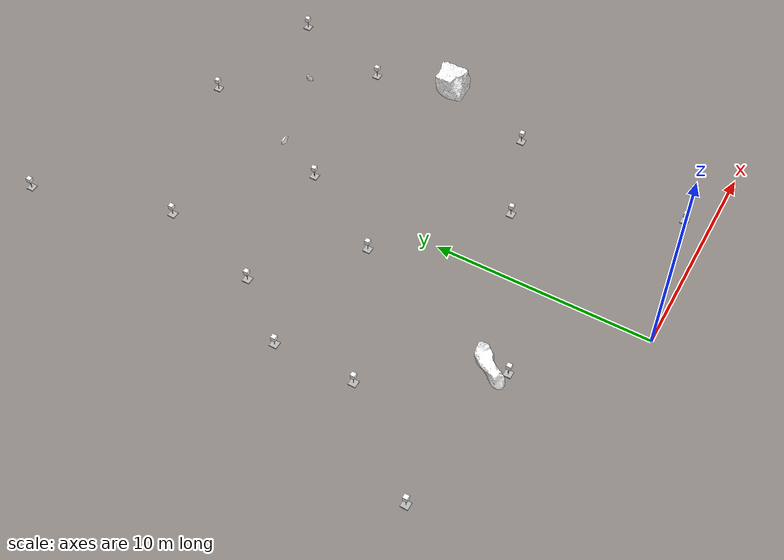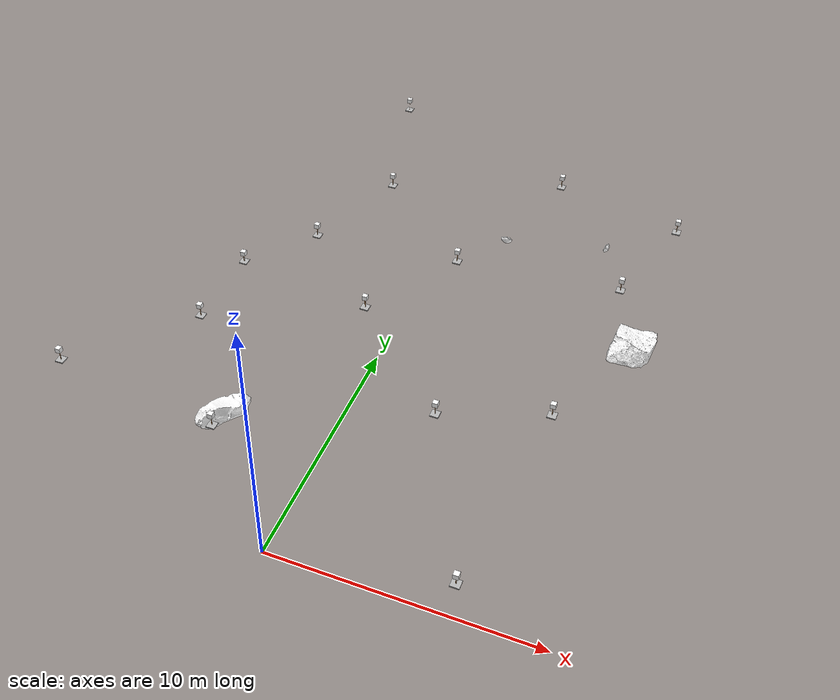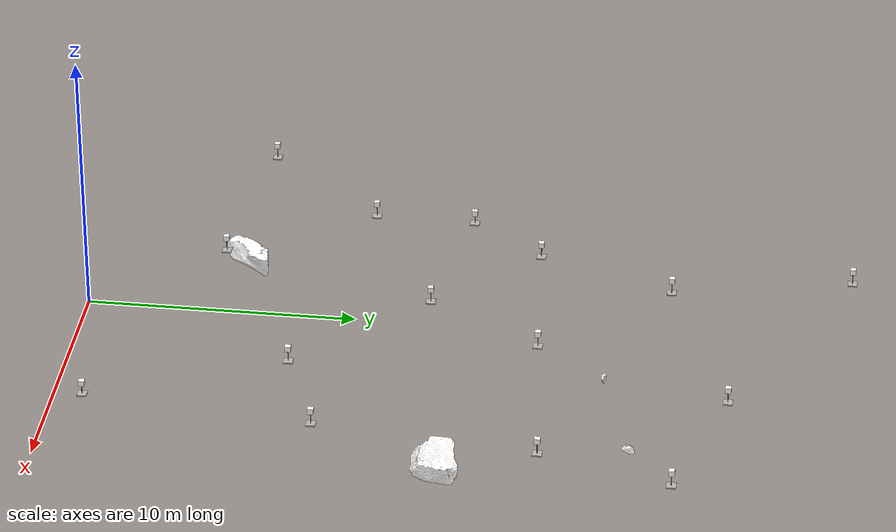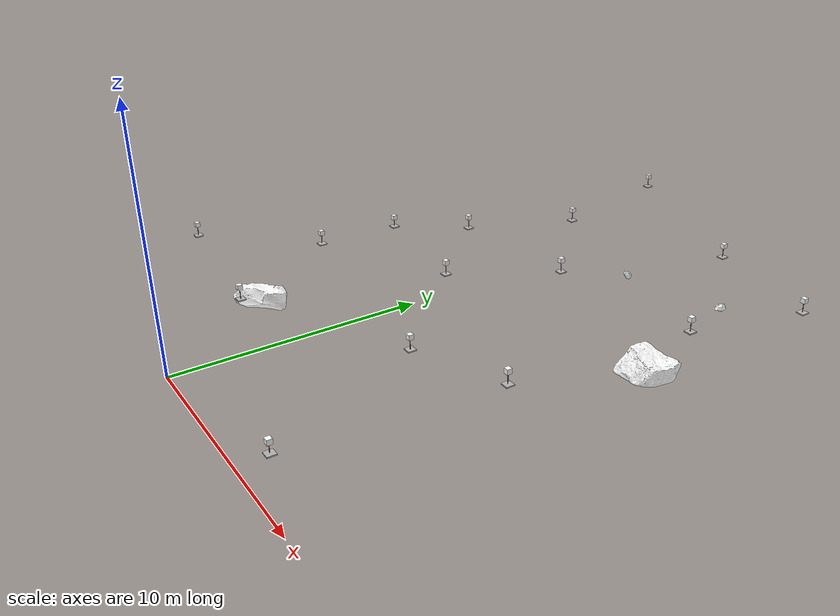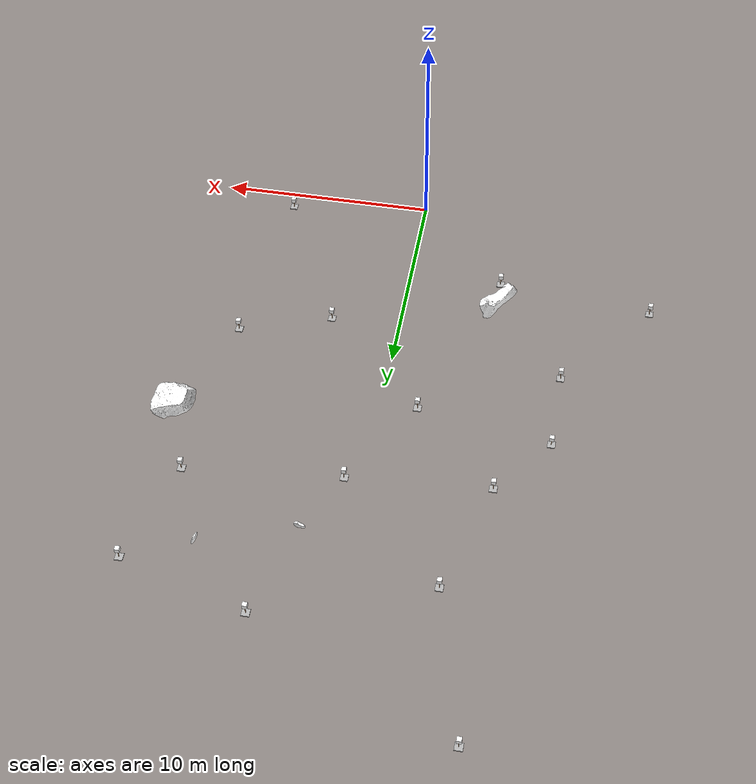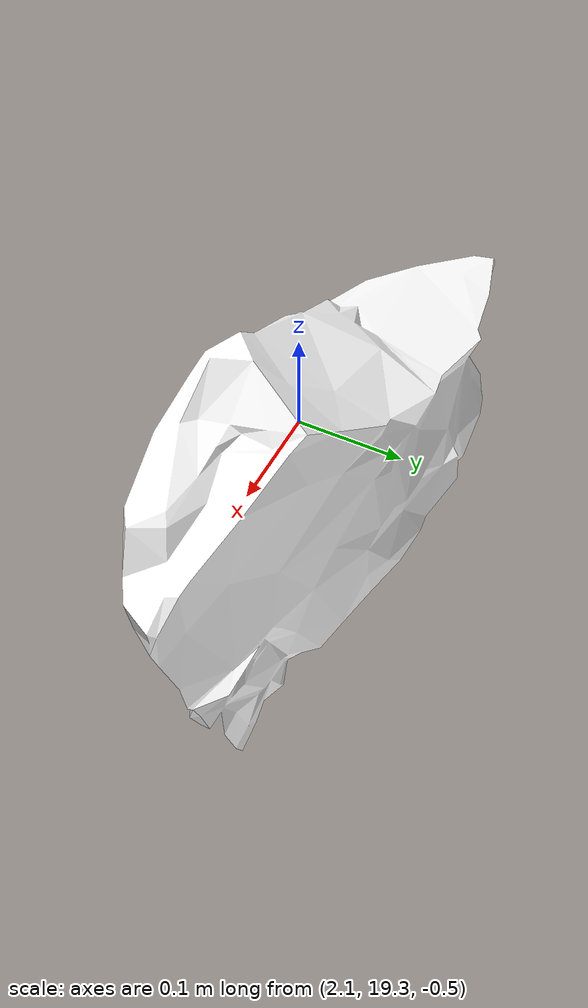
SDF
<sdf version="1.7">
 <world name="rover_world">
  <gravity>0 0 -9.81</gravity>
  <physics name="dart_physics" type="ignored">
   <max_step_size>0.003</max_step_size>
   <real_time_update_rate>333</real_time_update_rate>
   <real_time_factor>1.0</real_time_factor>
  </physics>
  <plugin filename="ignition-gazebo-physics-system" name="ignition::gazebo::systems::Physics"/>
  <plugin filename="ignition-gazebo-user-commands-system" name="ignition::gazebo::systems::UserCommands"/>
  <plugin filename="ignition-gazebo-scene-broadcaster-system" name="ignition::gazebo::systems::SceneBroadcaster"/>
  <plugin filename="ignition-gazebo-contact-system" name="ignition::gazebo::systems::Contact"/>
  <plugin filename="ignition-gazebo-pose-publisher-system" name="ignition::gazebo::systems::PosePublisher">
   <publish_link_pose>false</publish_link_pose>
   <publish_nested_model_pose>false</publish_nested_model_pose>
   <use_pose_vector_msg>true</use_pose_vector_msg>
   <update_frequency>50</update_frequency>
  </plugin>
  <plugin filename="ignition-gazebo-sensors-system" name="ignition::gazebo::systems::Sensors">
   <render_engine>ogre2</render_engine>
  </plugin>
  <plugin filename="ignition-gazebo-imu-system" name="ignition::gazebo::systems::Imu"/>
  <plugin filename="ignition-gazebo-magnetometer-system" name="ignition::gazebo::systems::Magnetometer"/>
  <scene>
   <ambient>0.95 0.95 0.95 1</ambient>
   <background>0.70 0.70 0.70 1</background>
   <shadows>false</shadows>
  </scene>
  <light type="directional" name="sun">
   <cast_shadows>false</cast_shadows>
   <pose>0 0 30 0 0 0</pose>
   <diffuse>0.9 0.85 0.8 1</diffuse>
   <specular>0.2 0.2 0.2 1</specular>
   <direction>-0.3 0.3 -0.9</direction>
  </light>
  <model name="ArUco_51">
   <static>true</static>
   <pose>3.1830 8.0120 0.0436 0.0000 0.0000 0.0000</pose>
   <include><uri>model://aruco_1</uri></include>
  </model>
  <model name="ArUco_52">
   <static>true</static>
   <pose>7.2690 9.4820 0.1664 0.0000 0.0000 0.0000</pose>
   <include><uri>model://aruco_2</uri></include>
  </model>
  <model name="ArUco_53">
   <static>true</static>
   <pose>7.8780 17.5830 -0.0192 0.0000 0.0000 0.0000</pose>
   <include><uri>model://aruco_3</uri></include>
  </model>
  <model name="ArUco_54">
   <static>true</static>
   <pose>9.2250 22.3890 -0.0382 0.0000 0.0000 0.0000</pose>
   <include><uri>model://aruco_4</uri></include>
  </model>
  <model name="ArUco_55">
   <static>true</static>
   <pose>3.5180 23.9900 -0.2291 0.0000 0.0000 0.0000</pose>
   <include><uri>model://aruco_5</uri></include>
  </model>
  <model name="ArUco_56">
   <static>true</static>
   <pose>0.8820 16.8700 -0.0882 0.0000 0.0000 0.0000</pose>
   <include><uri>model://aruco_6</uri></include>
  </model>
  <model name="ArUco_57">
   <static>true</static>
   <pose>-3.9440 21.4150 -0.4407 0.0000 0.0000 0.0000</pose>
   <include><uri>model://aruco_7</uri></include>
  </model>
  <model name="ArUco_58">
   <static>true</static>
   <pose>-5.4910 16.3340 -0.1752 0.0000 0.0000 0.0000</pose>
   <include><uri>model://aruco_8</uri></include>
  </model>
  <model name="ArUco_59">
   <static>true</static>
   <pose>-7.6950 13.5280 -0.2078 0.0000 0.0000 0.0000</pose>
   <include><uri>model://aruco_9</uri></include>
  </model>
  <model name="ArUco_60">
   <static>true</static>
   <pose>-1.6100 12.6020 -0.0469 0.0000 0.0000 0.0000</pose>
   <include><uri>model://aruco_10</uri></include>
  </model>
  <model name="ArUco_61">
   <static>true</static>
   <pose>-7.7150 9.7210 -0.1750 0.0000 0.0000 0.0000</pose>
   <include><uri>model://aruco_11</uri></include>
  </model>
  <model name="ArUco_62">
   <static>true</static>
   <pose>-4.3110 4.4420 -0.0557 0.0000 0.0000 0.0000</pose>
   <include><uri>model://aruco_12</uri></include>
  </model>
  <model name="ArUco_63">
   <static>true</static>
   <pose>-5.7200 28.1180 -0.6285 0.0000 0.0000 0.0000</pose>
   <include><uri>model://aruco_13</uri></include>
  </model>
  <model name="ArUco_64">
   <static>true</static>
   <pose>-11.4380 5.2300 -0.0173 0.0000 0.0000 0.0000</pose>
   <include><uri>model://aruco_14</uri></include>
  </model>
  <model name="ArUco_65">
   <static>true</static>
   <pose>6.4830 1.1020 0.2320 0.0000 0.0000 0.0000</pose>
   <include><uri>model://aruco_15</uri></include>
  </model>
  <model name="Rock_1">
   <static>true</static>
   <pose>6.5468 20.6896 -0.4470 -1.6554 0.1465 1.4758</pose>
   <link name="rock_link">
    <inertial>
     <mass>10.0</mass>
     <inertia><ixx>0.1</ixx><ixy>0.0</ixy><ixz>0.0</ixz><iyy>0.1</iyy><iyz>0.0</iyz><izz>0.1</izz></inertia>
    </inertial>
    <visual name="visual">
     <geometry><mesh><uri>model://rock_8/meshes/rock_8.obj</uri></mesh></geometry>
     <material>
      <ambient>1 1 1 1</ambient>
      <diffuse>1 1 1 1</diffuse>
      <pbr><metal><albedo_map>model://rock_5/meshes/rock_small_diffuse.jpg</albedo_map></metal></pbr>
     </material>
    </visual>
   </link>
  </model>
  <model name="Rock_3">
   <static>true</static>
   <pose>2.3160 19.4186 -0.3355 1.6054 -0.0453 -0.2907</pose>
   <link name="rock_link">
    <inertial>
     <mass>10.0</mass>
     <inertia><ixx>0.1</ixx><ixy>0.0</ixy><ixz>0.0</ixz><iyy>0.1</iyy><iyz>0.0</iyz><izz>0.1</izz></inertia>
    </inertial>
    <visual name="visual">
     <geometry><mesh><uri>model://rock_8/meshes/rock_8.obj</uri></mesh></geometry>
     <material>
      <ambient>1 1 1 1</ambient>
      <diffuse>1 1 1 1</diffuse>
      <pbr><metal><albedo_map>model://rock_5/meshes/rock_small_diffuse.jpg</albedo_map></metal></pbr>
     </material>
    </visual>
   </link>
  </model>
  <model name="Rock_4">
   <static>true</static>
   <pose>9.1624 14.2031 -0.2086 1.4363 -0.0868 -0.7751</pose>
   <link name="rock_link">
    <inertial>
     <mass>5000.0</mass>
     <inertia>
      <ixx>1000.0</ixx>
      <ixy>0.0</ixy>
      <ixz>0.0</ixz>
      <iyy>1000.0</iyy>
      <iyz>0.0</iyz>
      <izz>1000.0</izz>
     </inertia>
    </inertial>
    <visual name="visual">
     <geometry><mesh><uri>model://rock_1/meshes/rock_1.obj</uri></mesh></geometry>
     <material>
      <ambient>1 1 1 1</ambient>
      <diffuse>1 1 1 1</diffuse>
      <pbr><metal><albedo_map>model://rock_1/meshes/rock_1_diffuse.jpg</albedo_map></metal></pbr>
     </material>
    </visual>
    <collision name="collision">
     <geometry><mesh><uri>model://rock_1/meshes/rock_1.obj</uri></mesh></geometry>
    </collision>
   </link>
  </model>
  <model name="Rock_5">
   <static>true</static>
   <pose>-4.5763 5.4552 -0.2265 1.3156 -0.0304 0.9777</pose>
   <link name="rock_link">
    <inertial>
     <mass>5000.0</mass>
     <inertia>
      <ixx>1000.0</ixx>
      <ixy>0.0</ixy>
      <ixz>0.0</ixz>
      <iyy>1000.0</iyy>
      <iyz>0.0</iyz>
      <izz>1000.0</izz>
     </inertia>
    </inertial>
    <visual name="visual">
     <geometry><mesh><uri>model://rock_4/meshes/rock_4.obj</uri></mesh></geometry>
     <material>
      <ambient>1 1 1 1</ambient>
      <diffuse>1 1 1 1</diffuse>
      <pbr><metal><albedo_map>model://rock_4/meshes/rock_4_diffuse.jpg</albedo_map></metal></pbr>
     </material>
    </visual>
    <collision name="collision">
     <geometry><mesh><uri>model://rock_4/meshes/rock_4.obj</uri></mesh></geometry>
    </collision>
   </link>
  </model>
 </world>
</sdf>

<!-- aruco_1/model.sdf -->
<sdf version="1.6">
  <model name="aruco_1">
    <static>true</static>
    <link name="link">
      <!-- Concrete Base -->
      <visual name="base_visual">
        <pose>0 0 0.025 0 0 0</pose>
        <geometry>
          <box>
            <size>0.35 0.35 0.05</size>
          </box>
        </geometry>
        <material>
          <ambient>0.7 0.7 0.7 1</ambient>
          <diffuse>0.7 0.7 0.7 1</diffuse>
        </material>
      </visual>
      <collision name="base_collision">
        <pose>0 0 0.025 0 0 0</pose>
        <geometry>
          <box>
            <size>0.35 0.35 0.05</size>
          </box>
        </geometry>
      </collision>

      <!-- Wooden Pole -->
      <visual name="pole_visual">
        <pose>0 0 0.26 0 0 0</pose>
        <geometry>
          <cylinder>
            <radius>0.015</radius>
            <length>0.42</length>
          </cylinder>
        </geometry>
        <material>
          <ambient>0.6 0.4 0.2 1</ambient>
          <diffuse>0.6 0.4 0.2 1</diffuse>
        </material>
      </visual>
      <collision name="pole_collision">
        <pose>0 0 0.26 0 0 0</pose>
        <geometry>
          <cylinder>
            <radius>0.015</radius>
            <length>0.42</length>
          </cylinder>
        </geometry>
      </collision>

      <!-- Head Box with ArUco Texture -->
      <visual name="head_visual">
        <pose>0 0 0.575 0 0 0</pose>
        <geometry>
          <box>
            <size>0.21 0.21 0.21</size>
          </box>
        </geometry>
        <material>
          <ambient>1 1 1 1</ambient>
          <diffuse>1 1 1 1</diffuse>
          <pbr>
            <metal>
              <albedo_map>model://aruco_1/materials/textures/marker_1.png</albedo_map>
            </metal>
          </pbr>
        </material>
      </visual>
      <collision name="head_collision">
        <pose>0 0 0.575 0 0 0</pose>
        <geometry>
          <box>
            <size>0.21 0.21 0.21</size>
          </box>
        </geometry>
      </collision>
    </link>
  </model>
</sdf>

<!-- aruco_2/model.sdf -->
<sdf version="1.6">
  <model name="aruco_2">
    <static>true</static>
    <link name="link">
      <!-- Concrete Base -->
      <visual name="base_visual">
        <pose>0 0 0.025 0 0 0</pose>
        <geometry>
          <box>
            <size>0.35 0.35 0.05</size>
          </box>
        </geometry>
        <material>
          <ambient>0.7 0.7 0.7 1</ambient>
          <diffuse>0.7 0.7 0.7 1</diffuse>
        </material>
      </visual>
      <collision name="base_collision">
        <pose>0 0 0.025 0 0 0</pose>
        <geometry>
          <box>
            <size>0.35 0.35 0.05</size>
          </box>
        </geometry>
      </collision>

      <!-- Wooden Pole -->
      <visual name="pole_visual">
        <pose>0 0 0.26 0 0 0</pose>
        <geometry>
          <cylinder>
            <radius>0.015</radius>
            <length>0.42</length>
          </cylinder>
        </geometry>
        <material>
          <ambient>0.6 0.4 0.2 1</ambient>
          <diffuse>0.6 0.4 0.2 1</diffuse>
        </material>
      </visual>
      <collision name="pole_collision">
        <pose>0 0 0.26 0 0 0</pose>
        <geometry>
          <cylinder>
            <radius>0.015</radius>
            <length>0.42</length>
          </cylinder>
        </geometry>
      </collision>

      <!-- Head Box with ArUco Texture -->
      <visual name="head_visual">
        <pose>0 0 0.575 0 0 0</pose>
        <geometry>
          <box>
            <size>0.21 0.21 0.21</size>
          </box>
        </geometry>
        <material>
          <ambient>1 1 1 1</ambient>
          <diffuse>1 1 1 1</diffuse>
          <pbr>
            <metal>
              <albedo_map>model://aruco_2/materials/textures/marker_2.png</albedo_map>
            </metal>
          </pbr>
        </material>
      </visual>
      <collision name="head_collision">
        <pose>0 0 0.575 0 0 0</pose>
        <geometry>
          <box>
            <size>0.21 0.21 0.21</size>
          </box>
        </geometry>
      </collision>
    </link>
  </model>
</sdf>

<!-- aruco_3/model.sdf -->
<sdf version="1.6">
  <model name="aruco_3">
    <static>true</static>
    <link name="link">
      <!-- Concrete Base -->
      <visual name="base_visual">
        <pose>0 0 0.025 0 0 0</pose>
        <geometry>
          <box>
            <size>0.35 0.35 0.05</size>
          </box>
        </geometry>
        <material>
          <ambient>0.7 0.7 0.7 1</ambient>
          <diffuse>0.7 0.7 0.7 1</diffuse>
        </material>
      </visual>
      <collision name="base_collision">
        <pose>0 0 0.025 0 0 0</pose>
        <geometry>
          <box>
            <size>0.35 0.35 0.05</size>
          </box>
        </geometry>
      </collision>

      <!-- Wooden Pole -->
      <visual name="pole_visual">
        <pose>0 0 0.26 0 0 0</pose>
        <geometry>
          <cylinder>
            <radius>0.015</radius>
            <length>0.42</length>
          </cylinder>
        </geometry>
        <material>
          <ambient>0.6 0.4 0.2 1</ambient>
          <diffuse>0.6 0.4 0.2 1</diffuse>
        </material>
      </visual>
      <collision name="pole_collision">
        <pose>0 0 0.26 0 0 0</pose>
        <geometry>
          <cylinder>
            <radius>0.015</radius>
            <length>0.42</length>
          </cylinder>
        </geometry>
      </collision>

      <!-- Head Box with ArUco Texture -->
      <visual name="head_visual">
        <pose>0 0 0.575 0 0 0</pose>
        <geometry>
          <box>
            <size>0.21 0.21 0.21</size>
          </box>
        </geometry>
        <material>
          <ambient>1 1 1 1</ambient>
          <diffuse>1 1 1 1</diffuse>
          <pbr>
            <metal>
              <albedo_map>model://aruco_3/materials/textures/marker_3.png</albedo_map>
            </metal>
          </pbr>
        </material>
      </visual>
      <collision name="head_collision">
        <pose>0 0 0.575 0 0 0</pose>
        <geometry>
          <box>
            <size>0.21 0.21 0.21</size>
          </box>
        </geometry>
      </collision>
    </link>
  </model>
</sdf>

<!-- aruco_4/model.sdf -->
<sdf version="1.6">
  <model name="aruco_4">
    <static>true</static>
    <link name="link">
      <!-- Concrete Base -->
      <visual name="base_visual">
        <pose>0 0 0.025 0 0 0</pose>
        <geometry>
          <box>
            <size>0.35 0.35 0.05</size>
          </box>
        </geometry>
        <material>
          <ambient>0.7 0.7 0.7 1</ambient>
          <diffuse>0.7 0.7 0.7 1</diffuse>
        </material>
      </visual>
      <collision name="base_collision">
        <pose>0 0 0.025 0 0 0</pose>
        <geometry>
          <box>
            <size>0.35 0.35 0.05</size>
          </box>
        </geometry>
      </collision>

      <!-- Wooden Pole -->
      <visual name="pole_visual">
        <pose>0 0 0.26 0 0 0</pose>
        <geometry>
          <cylinder>
            <radius>0.015</radius>
            <length>0.42</length>
          </cylinder>
        </geometry>
        <material>
          <ambient>0.6 0.4 0.2 1</ambient>
          <diffuse>0.6 0.4 0.2 1</diffuse>
        </material>
      </visual>
      <collision name="pole_collision">
        <pose>0 0 0.26 0 0 0</pose>
        <geometry>
          <cylinder>
            <radius>0.015</radius>
            <length>0.42</length>
          </cylinder>
        </geometry>
      </collision>

      <!-- Head Box with ArUco Texture -->
      <visual name="head_visual">
        <pose>0 0 0.575 0 0 0</pose>
        <geometry>
          <box>
            <size>0.21 0.21 0.21</size>
          </box>
        </geometry>
        <material>
          <ambient>1 1 1 1</ambient>
          <diffuse>1 1 1 1</diffuse>
          <pbr>
            <metal>
              <albedo_map>model://aruco_4/materials/textures/marker_4.png</albedo_map>
            </metal>
          </pbr>
        </material>
      </visual>
      <collision name="head_collision">
        <pose>0 0 0.575 0 0 0</pose>
        <geometry>
          <box>
            <size>0.21 0.21 0.21</size>
          </box>
        </geometry>
      </collision>
    </link>
  </model>
</sdf>

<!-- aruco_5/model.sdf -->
<sdf version="1.6">
  <model name="aruco_5">
    <static>true</static>
    <link name="link">
      <!-- Concrete Base -->
      <visual name="base_visual">
        <pose>0 0 0.025 0 0 0</pose>
        <geometry>
          <box>
            <size>0.35 0.35 0.05</size>
          </box>
        </geometry>
        <material>
          <ambient>0.7 0.7 0.7 1</ambient>
          <diffuse>0.7 0.7 0.7 1</diffuse>
        </material>
      </visual>
      <collision name="base_collision">
        <pose>0 0 0.025 0 0 0</pose>
        <geometry>
          <box>
            <size>0.35 0.35 0.05</size>
          </box>
        </geometry>
      </collision>

      <!-- Wooden Pole -->
      <visual name="pole_visual">
        <pose>0 0 0.26 0 0 0</pose>
        <geometry>
          <cylinder>
            <radius>0.015</radius>
            <length>0.42</length>
          </cylinder>
        </geometry>
        <material>
          <ambient>0.6 0.4 0.2 1</ambient>
          <diffuse>0.6 0.4 0.2 1</diffuse>
        </material>
      </visual>
      <collision name="pole_collision">
        <pose>0 0 0.26 0 0 0</pose>
        <geometry>
          <cylinder>
            <radius>0.015</radius>
            <length>0.42</length>
          </cylinder>
        </geometry>
      </collision>

      <!-- Head Box with ArUco Texture -->
      <visual name="head_visual">
        <pose>0 0 0.575 0 0 0</pose>
        <geometry>
          <box>
            <size>0.21 0.21 0.21</size>
          </box>
        </geometry>
        <material>
          <ambient>1 1 1 1</ambient>
          <diffuse>1 1 1 1</diffuse>
          <pbr>
            <metal>
              <albedo_map>model://aruco_5/materials/textures/marker_5.png</albedo_map>
            </metal>
          </pbr>
        </material>
      </visual>
      <collision name="head_collision">
        <pose>0 0 0.575 0 0 0</pose>
        <geometry>
          <box>
            <size>0.21 0.21 0.21</size>
          </box>
        </geometry>
      </collision>
    </link>
  </model>
</sdf>

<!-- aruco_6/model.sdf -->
<sdf version="1.6">
  <model name="aruco_6">
    <static>true</static>
    <link name="link">
      <!-- Concrete Base -->
      <visual name="base_visual">
        <pose>0 0 0.025 0 0 0</pose>
        <geometry>
          <box>
            <size>0.35 0.35 0.05</size>
          </box>
        </geometry>
        <material>
          <ambient>0.7 0.7 0.7 1</ambient>
          <diffuse>0.7 0.7 0.7 1</diffuse>
        </material>
      </visual>
      <collision name="base_collision">
        <pose>0 0 0.025 0 0 0</pose>
        <geometry>
          <box>
            <size>0.35 0.35 0.05</size>
          </box>
        </geometry>
      </collision>

      <!-- Wooden Pole -->
      <visual name="pole_visual">
        <pose>0 0 0.26 0 0 0</pose>
        <geometry>
          <cylinder>
            <radius>0.015</radius>
            <length>0.42</length>
          </cylinder>
        </geometry>
        <material>
          <ambient>0.6 0.4 0.2 1</ambient>
          <diffuse>0.6 0.4 0.2 1</diffuse>
        </material>
      </visual>
      <collision name="pole_collision">
        <pose>0 0 0.26 0 0 0</pose>
        <geometry>
          <cylinder>
            <radius>0.015</radius>
            <length>0.42</length>
          </cylinder>
        </geometry>
      </collision>

      <!-- Head Box with ArUco Texture -->
      <visual name="head_visual">
        <pose>0 0 0.575 0 0 0</pose>
        <geometry>
          <box>
            <size>0.21 0.21 0.21</size>
          </box>
        </geometry>
        <material>
          <ambient>1 1 1 1</ambient>
          <diffuse>1 1 1 1</diffuse>
          <pbr>
            <metal>
              <albedo_map>model://aruco_6/materials/textures/marker_6.png</albedo_map>
            </metal>
          </pbr>
        </material>
      </visual>
      <collision name="head_collision">
        <pose>0 0 0.575 0 0 0</pose>
        <geometry>
          <box>
            <size>0.21 0.21 0.21</size>
          </box>
        </geometry>
      </collision>
    </link>
  </model>
</sdf>

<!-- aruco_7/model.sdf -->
<sdf version="1.6">
  <model name="aruco_7">
    <static>true</static>
    <link name="link">
      <!-- Concrete Base -->
      <visual name="base_visual">
        <pose>0 0 0.025 0 0 0</pose>
        <geometry>
          <box>
            <size>0.35 0.35 0.05</size>
          </box>
        </geometry>
        <material>
          <ambient>0.7 0.7 0.7 1</ambient>
          <diffuse>0.7 0.7 0.7 1</diffuse>
        </material>
      </visual>
      <collision name="base_collision">
        <pose>0 0 0.025 0 0 0</pose>
        <geometry>
          <box>
            <size>0.35 0.35 0.05</size>
          </box>
        </geometry>
      </collision>

      <!-- Wooden Pole -->
      <visual name="pole_visual">
        <pose>0 0 0.26 0 0 0</pose>
        <geometry>
          <cylinder>
            <radius>0.015</radius>
            <length>0.42</length>
          </cylinder>
        </geometry>
        <material>
          <ambient>0.6 0.4 0.2 1</ambient>
          <diffuse>0.6 0.4 0.2 1</diffuse>
        </material>
      </visual>
      <collision name="pole_collision">
        <pose>0 0 0.26 0 0 0</pose>
        <geometry>
          <cylinder>
            <radius>0.015</radius>
            <length>0.42</length>
          </cylinder>
        </geometry>
      </collision>

      <!-- Head Box with ArUco Texture -->
      <visual name="head_visual">
        <pose>0 0 0.575 0 0 0</pose>
        <geometry>
          <box>
            <size>0.21 0.21 0.21</size>
          </box>
        </geometry>
        <material>
          <ambient>1 1 1 1</ambient>
          <diffuse>1 1 1 1</diffuse>
          <pbr>
            <metal>
              <albedo_map>model://aruco_7/materials/textures/marker_7.png</albedo_map>
            </metal>
          </pbr>
        </material>
      </visual>
      <collision name="head_collision">
        <pose>0 0 0.575 0 0 0</pose>
        <geometry>
          <box>
            <size>0.21 0.21 0.21</size>
          </box>
        </geometry>
      </collision>
    </link>
  </model>
</sdf>

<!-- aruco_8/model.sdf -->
<sdf version="1.6">
  <model name="aruco_8">
    <static>true</static>
    <link name="link">
      <!-- Concrete Base -->
      <visual name="base_visual">
        <pose>0 0 0.025 0 0 0</pose>
        <geometry>
          <box>
            <size>0.35 0.35 0.05</size>
          </box>
        </geometry>
        <material>
          <ambient>0.7 0.7 0.7 1</ambient>
          <diffuse>0.7 0.7 0.7 1</diffuse>
        </material>
      </visual>
      <collision name="base_collision">
        <pose>0 0 0.025 0 0 0</pose>
        <geometry>
          <box>
            <size>0.35 0.35 0.05</size>
          </box>
        </geometry>
      </collision>

      <!-- Wooden Pole -->
      <visual name="pole_visual">
        <pose>0 0 0.26 0 0 0</pose>
        <geometry>
          <cylinder>
            <radius>0.015</radius>
            <length>0.42</length>
          </cylinder>
        </geometry>
        <material>
          <ambient>0.6 0.4 0.2 1</ambient>
          <diffuse>0.6 0.4 0.2 1</diffuse>
        </material>
      </visual>
      <collision name="pole_collision">
        <pose>0 0 0.26 0 0 0</pose>
        <geometry>
          <cylinder>
            <radius>0.015</radius>
            <length>0.42</length>
          </cylinder>
        </geometry>
      </collision>

      <!-- Head Box with ArUco Texture -->
      <visual name="head_visual">
        <pose>0 0 0.575 0 0 0</pose>
        <geometry>
          <box>
            <size>0.21 0.21 0.21</size>
          </box>
        </geometry>
        <material>
          <ambient>1 1 1 1</ambient>
          <diffuse>1 1 1 1</diffuse>
          <pbr>
            <metal>
              <albedo_map>model://aruco_8/materials/textures/marker_8.png</albedo_map>
            </metal>
          </pbr>
        </material>
      </visual>
      <collision name="head_collision">
        <pose>0 0 0.575 0 0 0</pose>
        <geometry>
          <box>
            <size>0.21 0.21 0.21</size>
          </box>
        </geometry>
      </collision>
    </link>
  </model>
</sdf>

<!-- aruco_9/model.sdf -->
<sdf version="1.6">
  <model name="aruco_9">
    <static>true</static>
    <link name="link">
      <visual name="base_visual">
        <pose>0 0 0.025 0 0 0</pose>
        <geometry>
          <box>
            <size>0.35 0.35 0.05</size>
          </box>
        </geometry>
        <material>
          <ambient>0.7 0.7 0.7 1</ambient>
          <diffuse>0.7 0.7 0.7 1</diffuse>
        </material>
      </visual>
      <collision name="base_collision">
        <pose>0 0 0.025 0 0 0</pose>
        <geometry>
          <box>
            <size>0.35 0.35 0.05</size>
          </box>
        </geometry>
      </collision>
      <visual name="pole_visual">
        <pose>0 0 0.228500 0 0 0</pose>
        <geometry>
          <cylinder>
            <radius>0.015</radius>
            <length>0.357000</length>
          </cylinder>
        </geometry>
        <material>
          <ambient>0.6 0.4 0.2 1</ambient>
          <diffuse>0.6 0.4 0.2 1</diffuse>
        </material>
      </visual>
      <collision name="pole_collision">
        <pose>0 0 0.228500 0 0 0</pose>
        <geometry>
          <cylinder>
            <radius>0.015</radius>
            <length>0.357000</length>
          </cylinder>
        </geometry>
      </collision>
      <visual name="head_visual">
        <pose>0 0 0.496250 0 0 0</pose>
        <geometry>
          <box>
            <size>0.21 0.21 0.21</size>
          </box>
        </geometry>
        <material>
          <ambient>1 1 1 1</ambient>
          <diffuse>1 1 1 1</diffuse>
          <pbr>
            <metal>
              <albedo_map>model://aruco_9/materials/textures/marker_9.png</albedo_map>
            </metal>
          </pbr>
        </material>
      </visual>
      <collision name="head_collision">
        <pose>0 0 0.496250 0 0 0</pose>
        <geometry>
          <box>
            <size>0.21 0.21 0.21</size>
          </box>
        </geometry>
      </collision>
    </link>
  </model>
</sdf>

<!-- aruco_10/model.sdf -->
<sdf version="1.6">
  <model name="aruco_10">
    <static>true</static>
    <link name="link">
      <!-- Concrete Base -->
      <visual name="base_visual">
        <pose>0 0 0.025 0 0 0</pose>
        <geometry>
          <box>
            <size>0.35 0.35 0.05</size>
          </box>
        </geometry>
        <material>
          <ambient>0.7 0.7 0.7 1</ambient>
          <diffuse>0.7 0.7 0.7 1</diffuse>
        </material>
      </visual>
      <collision name="base_collision">
        <pose>0 0 0.025 0 0 0</pose>
        <geometry>
          <box>
            <size>0.35 0.35 0.05</size>
          </box>
        </geometry>
      </collision>

      <!-- Wooden Pole -->
      <visual name="pole_visual">
        <pose>0 0 0.26 0 0 0</pose>
        <geometry>
          <cylinder>
            <radius>0.015</radius>
            <length>0.42</length>
          </cylinder>
        </geometry>
        <material>
          <ambient>0.6 0.4 0.2 1</ambient>
          <diffuse>0.6 0.4 0.2 1</diffuse>
        </material>
      </visual>
      <collision name="pole_collision">
        <pose>0 0 0.26 0 0 0</pose>
        <geometry>
          <cylinder>
            <radius>0.015</radius>
            <length>0.42</length>
          </cylinder>
        </geometry>
      </collision>

      <!-- Head Box with ArUco Texture -->
      <visual name="head_visual">
        <pose>0 0 0.575 0 0 0</pose>
        <geometry>
          <box>
            <size>0.21 0.21 0.21</size>
          </box>
        </geometry>
        <material>
          <ambient>1 1 1 1</ambient>
          <diffuse>1 1 1 1</diffuse>
          <pbr>
            <metal>
              <albedo_map>model://aruco_10/materials/textures/marker_10.png</albedo_map>
            </metal>
          </pbr>
        </material>
      </visual>
      <collision name="head_collision">
        <pose>0 0 0.575 0 0 0</pose>
        <geometry>
          <box>
            <size>0.21 0.21 0.21</size>
          </box>
        </geometry>
      </collision>
    </link>
  </model>
</sdf>

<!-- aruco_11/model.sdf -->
<sdf version="1.6">
  <model name="aruco_11">
    <static>true</static>
    <link name="link">
      <!-- Concrete Base -->
      <visual name="base_visual">
        <pose>0 0 0.025 0 0 0</pose>
        <geometry>
          <box>
            <size>0.35 0.35 0.05</size>
          </box>
        </geometry>
        <material>
          <ambient>0.7 0.7 0.7 1</ambient>
          <diffuse>0.7 0.7 0.7 1</diffuse>
        </material>
      </visual>
      <collision name="base_collision">
        <pose>0 0 0.025 0 0 0</pose>
        <geometry>
          <box>
            <size>0.35 0.35 0.05</size>
          </box>
        </geometry>
      </collision>

      <!-- Wooden Pole -->
      <visual name="pole_visual">
        <pose>0 0 0.26 0 0 0</pose>
        <geometry>
          <cylinder>
            <radius>0.015</radius>
            <length>0.42</length>
          </cylinder>
        </geometry>
        <material>
          <ambient>0.6 0.4 0.2 1</ambient>
          <diffuse>0.6 0.4 0.2 1</diffuse>
        </material>
      </visual>
      <collision name="pole_collision">
        <pose>0 0 0.26 0 0 0</pose>
        <geometry>
          <cylinder>
            <radius>0.015</radius>
            <length>0.42</length>
          </cylinder>
        </geometry>
      </collision>

      <!-- Head Box with ArUco Texture -->
      <visual name="head_visual">
        <pose>0 0 0.575 0 0 0</pose>
        <geometry>
          <box>
            <size>0.21 0.21 0.21</size>
          </box>
        </geometry>
        <material>
          <ambient>1 1 1 1</ambient>
          <diffuse>1 1 1 1</diffuse>
          <pbr>
            <metal>
              <albedo_map>model://aruco_11/materials/textures/marker_11.png</albedo_map>
            </metal>
          </pbr>
        </material>
      </visual>
      <collision name="head_collision">
        <pose>0 0 0.575 0 0 0</pose>
        <geometry>
          <box>
            <size>0.21 0.21 0.21</size>
          </box>
        </geometry>
      </collision>
    </link>
  </model>
</sdf>

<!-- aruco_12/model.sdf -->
<sdf version="1.6">
  <model name="aruco_12">
    <static>true</static>
    <link name="link">
      <!-- Concrete Base -->
      <visual name="base_visual">
        <pose>0 0 0.025 0 0 0</pose>
        <geometry>
          <box>
            <size>0.35 0.35 0.05</size>
          </box>
        </geometry>
        <material>
          <ambient>0.7 0.7 0.7 1</ambient>
          <diffuse>0.7 0.7 0.7 1</diffuse>
        </material>
      </visual>
      <collision name="base_collision">
        <pose>0 0 0.025 0 0 0</pose>
        <geometry>
          <box>
            <size>0.35 0.35 0.05</size>
          </box>
        </geometry>
      </collision>

      <!-- Wooden Pole -->
      <visual name="pole_visual">
        <pose>0 0 0.26 0 0 0</pose>
        <geometry>
          <cylinder>
            <radius>0.015</radius>
            <length>0.42</length>
          </cylinder>
        </geometry>
        <material>
          <ambient>0.6 0.4 0.2 1</ambient>
          <diffuse>0.6 0.4 0.2 1</diffuse>
        </material>
      </visual>
      <collision name="pole_collision">
        <pose>0 0 0.26 0 0 0</pose>
        <geometry>
          <cylinder>
            <radius>0.015</radius>
            <length>0.42</length>
          </cylinder>
        </geometry>
      </collision>

      <!-- Head Box with ArUco Texture -->
      <visual name="head_visual">
        <pose>0 0 0.575 0 0 0</pose>
        <geometry>
          <box>
            <size>0.21 0.21 0.21</size>
          </box>
        </geometry>
        <material>
          <ambient>1 1 1 1</ambient>
          <diffuse>1 1 1 1</diffuse>
          <pbr>
            <metal>
              <albedo_map>model://aruco_12/materials/textures/marker_12.png</albedo_map>
            </metal>
          </pbr>
        </material>
      </visual>
      <collision name="head_collision">
        <pose>0 0 0.575 0 0 0</pose>
        <geometry>
          <box>
            <size>0.21 0.21 0.21</size>
          </box>
        </geometry>
      </collision>
    </link>
  </model>
</sdf>

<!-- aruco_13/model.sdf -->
<sdf version="1.6">
  <model name="aruco_13">
    <static>true</static>
    <link name="link">
      <!-- Concrete Base -->
      <visual name="base_visual">
        <pose>0 0 0.025 0 0 0</pose>
        <geometry>
          <box>
            <size>0.35 0.35 0.05</size>
          </box>
        </geometry>
        <material>
          <ambient>0.7 0.7 0.7 1</ambient>
          <diffuse>0.7 0.7 0.7 1</diffuse>
        </material>
      </visual>
      <collision name="base_collision">
        <pose>0 0 0.025 0 0 0</pose>
        <geometry>
          <box>
            <size>0.35 0.35 0.05</size>
          </box>
        </geometry>
      </collision>

      <!-- Wooden Pole -->
      <visual name="pole_visual">
        <pose>0 0 0.26 0 0 0</pose>
        <geometry>
          <cylinder>
            <radius>0.015</radius>
            <length>0.42</length>
          </cylinder>
        </geometry>
        <material>
          <ambient>0.6 0.4 0.2 1</ambient>
          <diffuse>0.6 0.4 0.2 1</diffuse>
        </material>
      </visual>
      <collision name="pole_collision">
        <pose>0 0 0.26 0 0 0</pose>
        <geometry>
          <cylinder>
            <radius>0.015</radius>
            <length>0.42</length>
          </cylinder>
        </geometry>
      </collision>

      <!-- Head Box with ArUco Texture -->
      <visual name="head_visual">
        <pose>0 0 0.575 0 0 0</pose>
        <geometry>
          <box>
            <size>0.21 0.21 0.21</size>
          </box>
        </geometry>
        <material>
          <ambient>1 1 1 1</ambient>
          <diffuse>1 1 1 1</diffuse>
          <pbr>
            <metal>
              <albedo_map>model://aruco_13/materials/textures/marker_13.png</albedo_map>
            </metal>
          </pbr>
        </material>
      </visual>
      <collision name="head_collision">
        <pose>0 0 0.575 0 0 0</pose>
        <geometry>
          <box>
            <size>0.21 0.21 0.21</size>
          </box>
        </geometry>
      </collision>
    </link>
  </model>
</sdf>

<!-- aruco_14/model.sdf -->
<sdf version="1.6">
  <model name="aruco_14">
    <static>true</static>
    <link name="link">
      <!-- Concrete Base -->
      <visual name="base_visual">
        <pose>0 0 0.025 0 0 0</pose>
        <geometry>
          <box>
            <size>0.35 0.35 0.05</size>
          </box>
        </geometry>
        <material>
          <ambient>0.7 0.7 0.7 1</ambient>
          <diffuse>0.7 0.7 0.7 1</diffuse>
        </material>
      </visual>
      <collision name="base_collision">
        <pose>0 0 0.025 0 0 0</pose>
        <geometry>
          <box>
            <size>0.35 0.35 0.05</size>
          </box>
        </geometry>
      </collision>

      <!-- Wooden Pole -->
      <visual name="pole_visual">
        <pose>0 0 0.26 0 0 0</pose>
        <geometry>
          <cylinder>
            <radius>0.015</radius>
            <length>0.42</length>
          </cylinder>
        </geometry>
        <material>
          <ambient>0.6 0.4 0.2 1</ambient>
          <diffuse>0.6 0.4 0.2 1</diffuse>
        </material>
      </visual>
      <collision name="pole_collision">
        <pose>0 0 0.26 0 0 0</pose>
        <geometry>
          <cylinder>
            <radius>0.015</radius>
            <length>0.42</length>
          </cylinder>
        </geometry>
      </collision>

      <!-- Head Box with ArUco Texture -->
      <visual name="head_visual">
        <pose>0 0 0.575 0 0 0</pose>
        <geometry>
          <box>
            <size>0.21 0.21 0.21</size>
          </box>
        </geometry>
        <material>
          <ambient>1 1 1 1</ambient>
          <diffuse>1 1 1 1</diffuse>
          <pbr>
            <metal>
              <albedo_map>model://aruco_14/materials/textures/marker_14.png</albedo_map>
            </metal>
          </pbr>
        </material>
      </visual>
      <collision name="head_collision">
        <pose>0 0 0.575 0 0 0</pose>
        <geometry>
          <box>
            <size>0.21 0.21 0.21</size>
          </box>
        </geometry>
      </collision>
    </link>
  </model>
</sdf>

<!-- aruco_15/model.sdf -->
<sdf version="1.6">
  <model name="aruco_15">
    <static>true</static>
    <link name="link">
      <visual name="base_visual">
        <pose>0 0 0.025 0 0 0</pose>
        <geometry>
          <box>
            <size>0.35 0.35 0.05</size>
          </box>
        </geometry>
        <material>
          <ambient>0.7 0.7 0.7 1</ambient>
          <diffuse>0.7 0.7 0.7 1</diffuse>
        </material>
      </visual>
      <collision name="base_collision">
        <pose>0 0 0.025 0 0 0</pose>
        <geometry>
          <box>
            <size>0.35 0.35 0.05</size>
          </box>
        </geometry>
      </collision>
      <visual name="pole_visual">
        <pose>0 0 0.228500 0 0 0</pose>
        <geometry>
          <cylinder>
            <radius>0.015</radius>
            <length>0.357000</length>
          </cylinder>
        </geometry>
        <material>
          <ambient>0.6 0.4 0.2 1</ambient>
          <diffuse>0.6 0.4 0.2 1</diffuse>
        </material>
      </visual>
      <collision name="pole_collision">
        <pose>0 0 0.228500 0 0 0</pose>
        <geometry>
          <cylinder>
            <radius>0.015</radius>
            <length>0.357000</length>
          </cylinder>
        </geometry>
      </collision>
      <visual name="head_visual">
        <pose>0 0 0.496250 0 0 0</pose>
        <geometry>
          <box>
            <size>0.21 0.21 0.21</size>
          </box>
        </geometry>
        <material>
          <ambient>1 1 1 1</ambient>
          <diffuse>1 1 1 1</diffuse>
          <pbr>
            <metal>
              <albedo_map>model://aruco_15/materials/textures/marker_15.png</albedo_map>
            </metal>
          </pbr>
        </material>
      </visual>
      <collision name="head_collision">
        <pose>0 0 0.496250 0 0 0</pose>
        <geometry>
          <box>
            <size>0.21 0.21 0.21</size>
          </box>
        </geometry>
      </collision>
    </link>
  </model>
</sdf>
